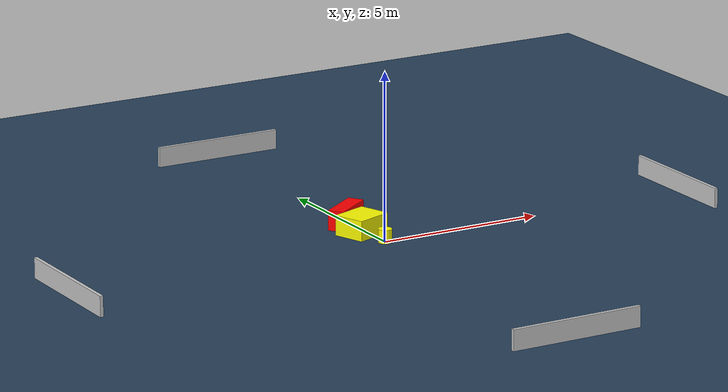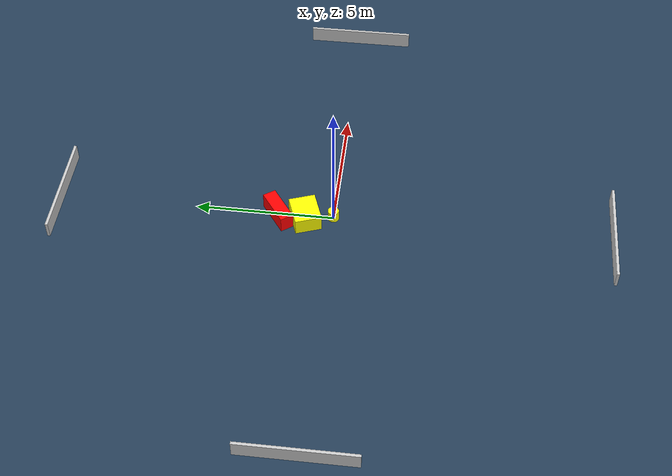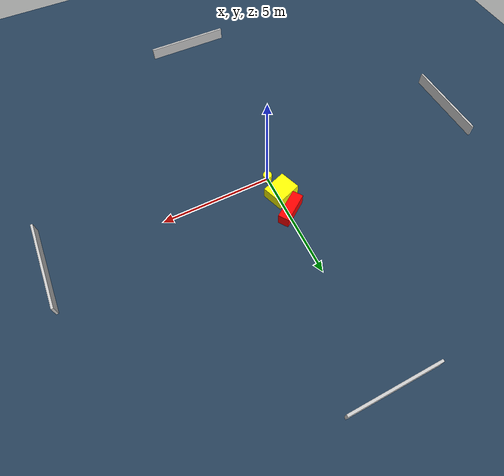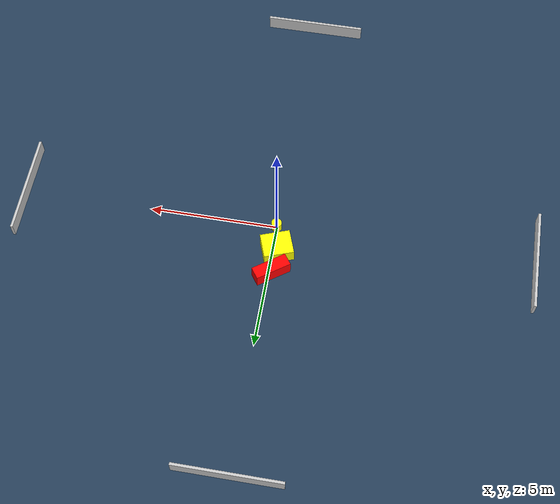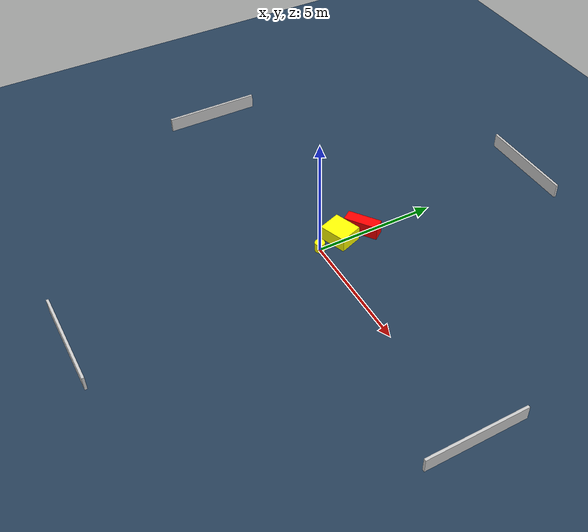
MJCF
<?xml version="1.0" ?>
<mujoco model="generated_environment">
  <option timestep="0.01" integrator="RK4" cone="elliptic"/>
  <default>
    <geom density="1"/>
  </default>
  <asset>
    <texture builtin="gradient" height="3072" name="skybox" rgb1="0.3 0.5 0.7" rgb2="0 0 0" type="skybox" width="512"/>
    <texture builtin="checker" height="300" name="groundplane" rgb1="0.2 0.3 0.4" rgb2="0.1 0.2 0.3" type="2d" width="300"/>
    <material name="groundplane" reflectance="0.2" texrepeat="5 5" texture="groundplane"/>
  </asset>
  <worldbody>
    <light dir="0 0 -1" directional="true" pos="0 0 1.5"/>
    <geom condim="3" friction="0.5 0.005 0.001" material="groundplane" name="floor" pos="0 0 0" size="0 0 0.05" type="plane"/>
    <body name="walls">
      <geom name="wall_1" condim="4" pos="-10.0 0.0 0.3" rgba="0.800000011920929 0.800000011920929 0.800000011920929 1.0" size="0.05 2.0 0.3" type="box"/>
      <geom name="wall_2" condim="4" pos="10.0 0.0 0.3" rgba="0.800000011920929 0.800000011920929 0.800000011920929 1.0" size="0.05 2.0 0.3" type="box"/>
      <geom name="wall_3" condim="4" pos="0.0 -10.0 0.3" rgba="0.800000011920929 0.800000011920929 0.800000011920929 1.0" size="2.0 0.05 0.3" type="box"/>
      <geom name="wall_4" condim="4" pos="0.0 10.0 0.3" rgba="0.800000011920929 0.800000011920929 0.800000011920929 1.0" size="2.0 0.05 0.3" type="box"/>
    </body>
    <body name="robot">
      <joint name="joint_x" type="slide" pos="0 0 0" axis="1 0 0"/>
      <joint name="joint_y" type="slide" pos="0 0 0" axis="0 1 0"/>
      <geom name="robot" type="cylinder" pos="0.0 0.0 0.2" size="0.2 0.2 0.0" mass="5.0" friction="1.0 0.005 0.0001" condim="4" rgba="1.0 1.0 0.0 1.0"/>
    </body>
    <body name="obstacle_1_movable">
      <geom name="obstacle_1_movable" condim="4" pos="-0.18085580608953247 1.0031125496694409 0.3" euler="0 0 289.7633356517979" friction="0.0 0.005 0.001" rgba="1.0 1.0 0.0 1.0" size="0.48285029339664354 0.576865509682576 0.3" type="box" mass="0.1"/>
      <joint type="free"/>
    </body>
    <body name="obstacle_2_static">
      <geom name="obstacle_2_static" condim="4" pos="-0.12631202953947743 1.9937327128166586 0.3" euler="0 0 215.4776469706603" friction="0.0 0.005 0.001" rgba="1.0 0.0 0.0 1.0" size="0.6964628299647311 0.2428983027336006 0.3" type="box"/>
    </body>
  </worldbody>
  <actuator>
    <motor name="actuator_x" joint="joint_x" gear="1" ctrlrange="-1 1"/>
    <motor name="actuator_y" joint="joint_y" gear="1" ctrlrange="-1 1"/>
  </actuator>
</mujoco>
